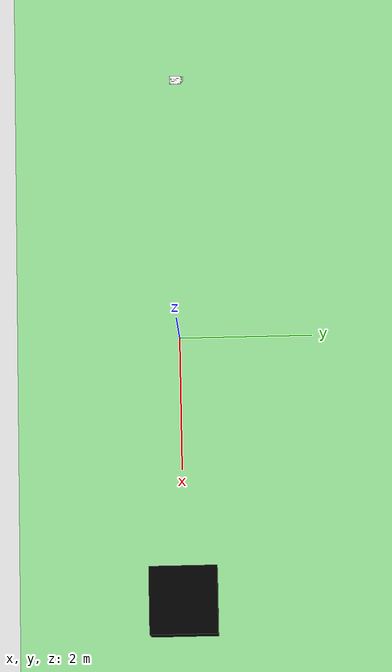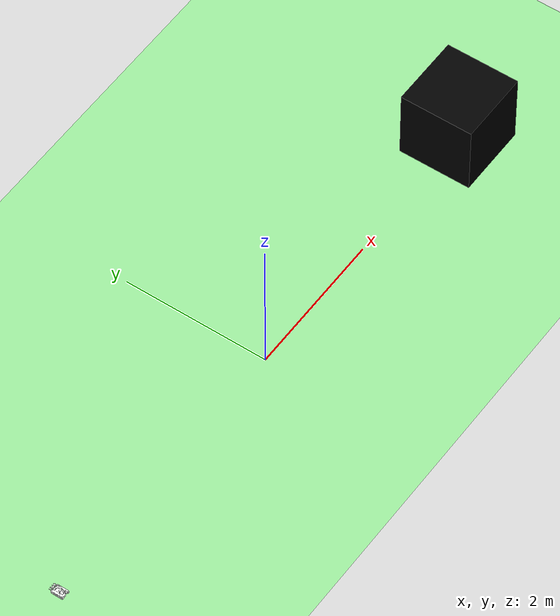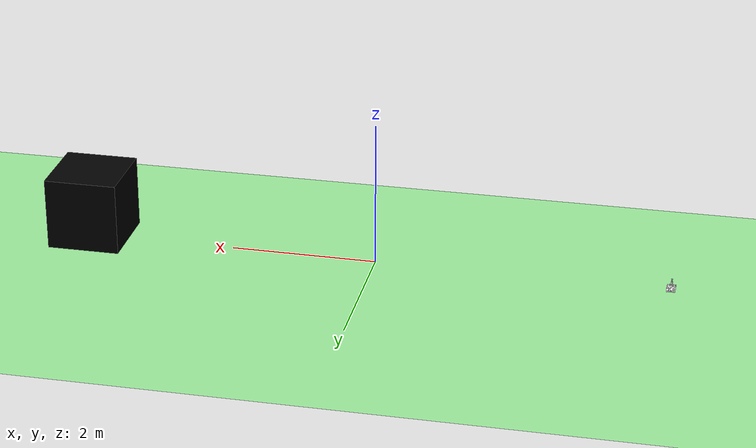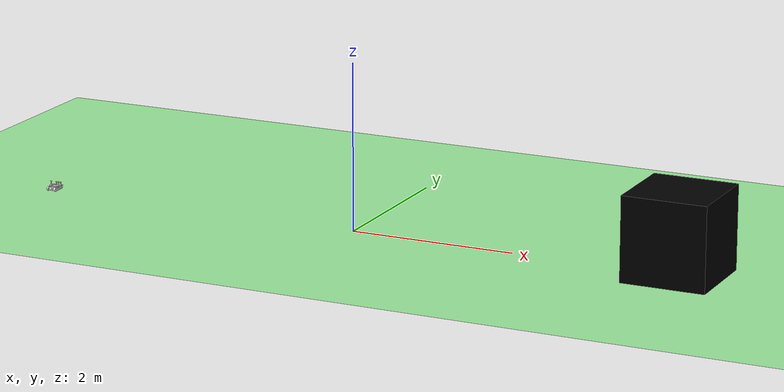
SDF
<?xml version="1.0" ?>
<sdf version="1.8">
    <world name="rover_map">

        <model name="ground">
            <static>true</static>

            <link name="ground_link">

                <collision name="ground_collision">
                    <geometry>
                        <plane>
                            <normal>0 0 1</normal>
                            <size>20 20</size>
                        </plane>
                    </geometry>
                </collision>

                <visual name="ground_visual">
                    <geometry>
                        <plane>
                            <normal>0 0 1</normal>
                            <size>20 20</size>
                        </plane>
                    </geometry>

                    <material>
                        <ambient>0.6 0.9 0.6 1</ambient>
                        <diffuse>0.6 0.9 0.6 1</diffuse>
                    </material>
                </visual>

            </link>
        </model>

        <model name="obstacle_1">
            <static>true</static>

            <pose>4 0 0.5 0 0 0</pose>

            <link name="obstacle_link">

                <collision name="obstacle_collision">
                    <geometry>
                        <box>
                            <size>1 1 1</size>
                        </box>
                    </geometry>
                </collision>

                <visual name="obstacle_visual">
                    <geometry>
                        <box>
                            <size>1 1 1</size>
                        </box>
                    </geometry>

                    <material>
                        <ambient>0 0 0 1</ambient>
                        <diffuse>0 0 0 1</diffuse>
                    </material>
                </visual>

            </link>
        </model>

        <model name="rover">
            <pose>-4 0 0 0 0 0</pose>

            <include>
                <name>marble_rover</name>
                <pose>0 0 0 0 0 0</pose>
                <uri>https://fuel.gazebosim.org/1.0/OpenRobotics/models/MARBLE_HD2_VISUALS_ONLY</uri>
            </include>

            <link name="collision_link">

                <collision name="rover_collision">
                    <geometry>
                        <box>
                            <size>2.4 1.5 1.5</size>
                        </box>
                    </geometry>
                </collision>

            </link>

            <plugin
                filename="gz-sim-velocity-control-system"
                name="gz::sim::systems::VelocityControl">
            </plugin>

            <plugin
                filename="gz-sim-pose-publisher-system"
                name="gz::sim::systems::PosePublisher">

                <publish_model_pose>true</publish_model_pose>
                <update_frequency>10</update_frequency>
                <topic>/rover/pose</topic>

            </plugin>

        </model>

    </world>
</sdf>

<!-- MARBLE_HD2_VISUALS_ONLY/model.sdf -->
<sdf version="1.6">
  <model name="marble_hd2_visuals_only">
    <static>true</static>
    <link name="base_link">
      <visual name= "Gripper_visual">
        <geometry>
          <mesh>
            <uri>model://HD2/meshes/hd2.dae</uri>
            <submesh>
              <name>Gripper</name>
              <center>false</center>
            </submesh>
          </mesh>
        </geometry>
        <material>
          <diffuse>1.0 1.0 1.0</diffuse>
          <specular>1.0 1.0 1.0</specular>
          <pbr>
            <metal>
              <albedo_map>model://HD2/materials/textures/HD2_Albedo.jpg</albedo_map>
              <metal_map>model://HD2/materials/textures/HD2_Metalness.jpg</metal_map>
              <roughness_map>model://HD2/materials/textures/HD2_Roughness.jpg</roughness_map>
            </metal>
          </pbr>
          <!-- fallback to script if no PBR support-->
          <script>
            <uri>model://HD2/materials/scripts/</uri>
            <uri>model://HD2/materials/textures/</uri>
            <name>UrbanTile/HD2_Diffuse</name>
          </script>
        </material>
      </visual>
      <visual name= "CameraPivot_visual">
        <geometry>
          <mesh>
            <uri>model://HD2/meshes/hd2.dae</uri>
            <submesh>
              <name>CameraPivot</name>
              <center>false</center>
            </submesh>
          </mesh>
        </geometry>
        <material>
          <diffuse>1.0 1.0 1.0</diffuse>
          <specular>1.0 1.0 1.0</specular>
          <pbr>
            <metal>
              <albedo_map>model://HD2/materials/textures/HD2_Albedo.jpg</albedo_map>
              <metal_map>model://HD2/materials/textures/HD2_Metalness.jpg</metal_map>
              <roughness_map>model://HD2/materials/textures/HD2_Roughness.jpg</roughness_map>
            </metal>
          </pbr>
          <!-- fallback to script if no PBR support-->
          <script>
            <uri>model://HD2/materials/scripts/</uri>
            <uri>model://HD2/materials/textures/</uri>
            <name>UrbanTile/HD2_Diffuse</name>
          </script>
        </material>
      </visual>
      <visual name= "CameraTilt_visual">
        <geometry>
          <mesh>
            <uri>model://HD2/meshes/hd2.dae</uri>
            <submesh>
              <name>CameraTilt</name>
              <center>false</center>
            </submesh>
          </mesh>
        </geometry>
        <material>
          <diffuse>1.0 1.0 1.0</diffuse>
          <specular>1.0 1.0 1.0</specular>
          <pbr>
            <metal>
              <albedo_map>model://HD2/materials/textures/HD2_Albedo.jpg</albedo_map>
              <metal_map>model://HD2/materials/textures/HD2_Metalness.jpg</metal_map>
              <roughness_map>model://HD2/materials/textures/HD2_Roughness.jpg</roughness_map>
            </metal>
          </pbr>
          <!-- fallback to script if no PBR support-->
          <script>
            <uri>model://HD2/materials/scripts/</uri>
            <uri>model://HD2/materials/textures/</uri>
            <name>UrbanTile/HD2_Diffuse</name>
          </script>
        </material>
      </visual>
      <visual name= "Body_visual">
        <geometry>
          <mesh>
            <uri>model://HD2/meshes/hd2.dae</uri>
            <submesh>
              <name>Body</name>
              <center>false</center>
            </submesh>
          </mesh>
        </geometry>
        <material>
          <diffuse>1.0 1.0 1.0</diffuse>
          <specular>1.0 1.0 1.0</specular>
          <pbr>
            <metal>
              <albedo_map>model://HD2/materials/textures/HD2_Albedo.jpg</albedo_map>
              <metal_map>model://HD2/materials/textures/HD2_Metalness.jpg</metal_map>
              <roughness_map>model://HD2/materials/textures/HD2_Roughness.jpg</roughness_map>
            </metal>
          </pbr>
          <!-- fallback to script if no PBR support-->
          <script>
            <uri>model://HD2/materials/scripts/</uri>
            <uri>model://HD2/materials/textures/</uri>
            <name>UrbanTile/HD2_Diffuse</name>
          </script>
        </material>
      </visual>
    </link>
  </model>
</sdf>
